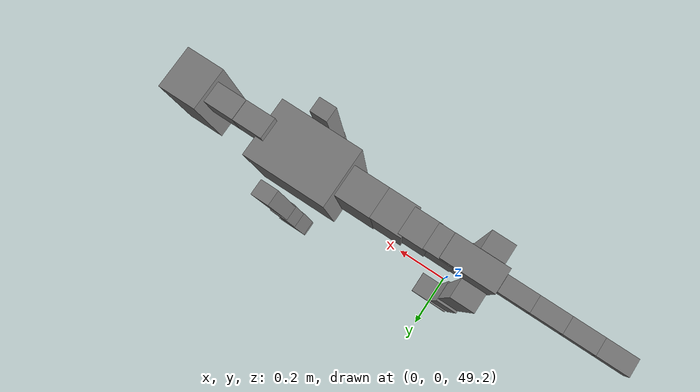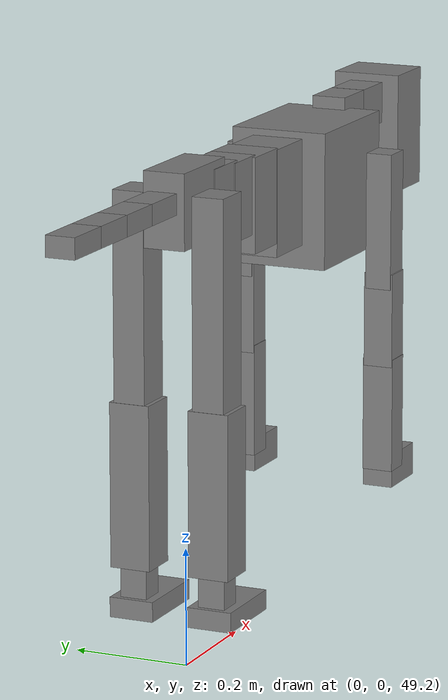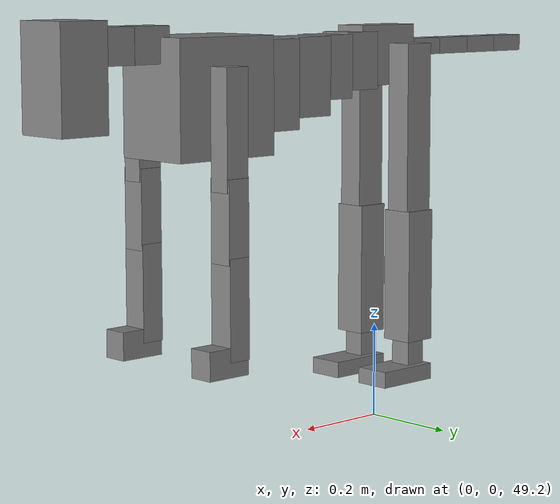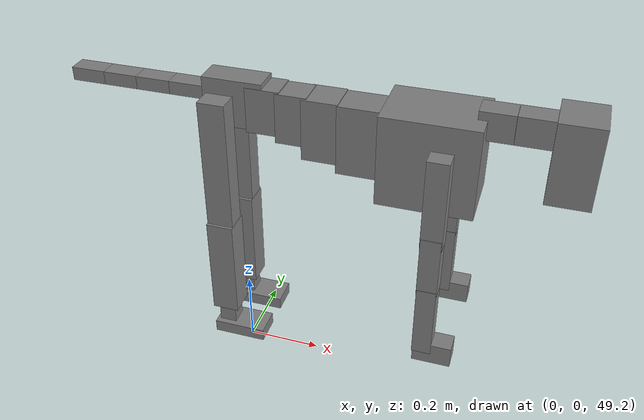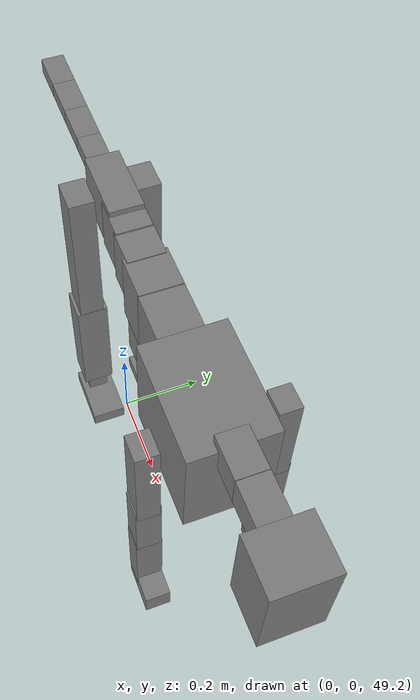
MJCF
<mujoco model="dog">

    <default>
        <joint armature="0.02" stiffness="1" damping="0.2" limited="true"/>
        <geom condim="3" friction="1 0.05 0.05" margin="0.01"/>
        <motor ctrllimited="true" ctrlrange="-1.0 1.0" forcelimited="true" gear="50"/>
    </default>

    <compiler inertiafromgeom="true" angle="radian"/>

    <option timestep="0.016" iterations="50" tolerance="1e-10" solver="Newton" jacobian="dense" cone="pyramidal"/>

    <size nconmax="20000" njmax="60000" nstack="5000000"/>
    <visual>
        <map force="0.1" zfar="30"/>
        <rgba haze="0.15 0.25 0.35 1"/>
        <quality shadowsize="2048"/>
        <global offwidth="800" offheight="800"/>
    </visual>

    <asset>
        <texture type="skybox" builtin="gradient" rgb1="0.3 0.5 0.7" rgb2="0 0 0" width="512" height="512"/>
        <texture name="texplane" type="2d" builtin="checker" rgb1=".2 .3 .4" rgb2=".1 0.15 0.2" width="512" height="512"
                 mark="cross" markrgb=".8 .8 .8"/>
        <texture name="texgeom" type="cube" builtin="flat" mark="cross" width="127" height="1278" rgb1="0.8 0.6 0.4"
                 rgb2="0.8 0.6 0.4" markrgb="1 1 1" random="0.01"/>

        <material name="matplane" reflectance="0.3" texture="texplane" texrepeat="1 1" texuniform="true"/>
        <material name="matgeom" texture="texgeom" texuniform="true" rgba="0.8 0.6 .4 1"/>
    </asset>

    <worldbody>
        <geom name="floor" pos="0 0 0" size="0 0 .25" type="plane" material="matplane" condim="3"/>

        <light directional="false" diffuse=".2 .2 .2" specular="0 0 0" pos="0 0 5" dir="0 0 -1" castshadow="false"/>
        <light mode="targetbodycom" target="torso" directional="false" diffuse=".8 .8 .8" specular="0.3 0.3 0.3"
               pos="0 0 4.0" dir="0 0 -1"/>

        <body name="root" pos="0 0 50">
            <freejoint name="root_1"/>
            <geom type="box" pos="0 0 -0.02" size="0.0774  0.0358  0.063" density="2030"/>

            <body name="spine1" pos="0.054 0 0">
                <joint name="spine1_y" axis="0 1 0" range="0 0.7" limited="true"/>
                <geom type="box" pos="0.02375 0 -0.03" size="0.04375  0.0375  0.05985" density="2030"/>

                <body name="spine2" pos="0.0612 0 0">
                    <joint name="spine2_y" axis="0 1 0" range="-0.15 0.15" limited="true"/>
                    <geom type="box" pos="0.03555  0  -0.04" size="0.04055  0.039  0.06615" density="2030"/>

                    <body name="spine3" pos="0.0730 0 0">
                        <joint name="spine3_y" axis="0 1 0" range="-0.15 0.15" limited="true"/>
                        <geom type="box" pos="0.03555  0  -0.057" size="0.04555  0.0445  0.081" density="2030"/>

                        <body name="spine4" pos="0.0780 0 0">
                            <joint name="spine4_y" axis="0 1 0" range="-0.15 0.15" limited="true"/>
                            <geom type="box" pos="0.05265  0  -0.07" size="0.05265  0.045  0.09135" density="2030"/>

                            <body name="torso" pos="0.1082 0 0">
                                <joint name="torso_y" axis="0 1 0" range="-0.15 0.15" limited="true"/>
                                <geom type="box" pos="0.11925  0  -0.085" size="0.11925  0.085  0.11745"
                                      density="2030"/>

                                <body name="neck1" pos="0.2160  0   0.0180">
                                    <joint name="neck1_y" axis="0 1 0" range="-1.2  -1" limited="true"/>
                                    <geom type="box" pos="0.0423  0  0" size="0.0423  0.03  0.036" density="2325"/>

                                    <body name="neck2" pos="0.0853  0  0">
                                        <joint name="neck2_y" axis="0 1 0" range="0.1  0" limited="true"/>
                                        <geom type="box" pos="0.0423  0  0" size="0.0423  0.03  0.036" density="2325"/>

                                        <body name="head" pos="0.0853  0  0">
                                            <joint name="head_y" axis="0 1 0" range="-0.3  -0.2" limited="true"/>
                                            <geom type="box" pos="0.0531  0  -0.055" size="0.0531  0.06  0.1044"
                                                  density="4030"/>

                                        </body>
                                    </body>
                                </body>

                                <body name="front_shoulder" pos="0.156  0   -0.0480">
                                    <joint name="front_shoulder_y" axis="0 1 0" range="-1 1.5" limited="true"/>
                                    <geom type="box" pos="0 0.13 -0.0913" size="0.0267  0.0228  0.1180" density="1158"/>
                                    <geom type="box" pos="0 -0.13 -0.0913" size="0.0267  0.0228  0.1180"
                                          density="1158"/>

                                    <body name="front_elbow" pos="0  0  -0.1826">
                                        <joint name="front_elbow_y" axis="0 1 0" range="-2 0" limited="true"/>
                                        <geom type="box" pos="0 0.13 -0.0818" size="0.0251  0.0257  0.0818"
                                              density="1081"/>
                                        <geom type="box" pos="0 -0.13 -0.0818" size="0.0251  0.0257  0.0818"
                                              density="1081"/>

                                        <body name="front_wrist" pos="0  0  -0.1637">
                                            <joint name="front_wrist_y" axis="0 1 0" range="-0.2 0" limited="true"/>
                                            <geom type="box" pos="0 0.13 -0.0860" size="0.0243  0.0270  0.0992"
                                                  density="1664"/>
                                            <geom type="box" pos="0 -0.13 -0.0860" size="0.0243  0.0270  0.0992"
                                                  density="1664"/>

                                            <body name="front_finger_end" pos="0  0  -0.1720">
                                                <joint name="front_finger_y" axis="0 1 0" range="-0.4 1"
                                                       limited="true"/>
                                                <geom type="box" pos="0.0267  0.13  -0.0137"
                                                      size="0.0490  0.0267  0.0287" density="1515"/>
                                                <geom type="box" pos="0.0267  -0.13  -0.0137"
                                                      size="0.0490  0.0267  0.0287" density="1515"/>

                                            </body>

                                        </body>
                                    </body>
                                </body>

                            </body>
                        </body>
                    </body>
                </body>
            </body>

            <body name="back_hip" pos="-0.03 0 -0.018">
                <joint name="back_hip_y" axis="0 1 0" range="-1.5 0.3" limited="true"/>
                <geom type="box" pos="0 0.07 -0.1723" size="0.0348  0.0273  0.1951" density="1154"/>
                <geom type="box" pos="0 -0.07 -0.1723" size="0.0348  0.0273  0.1951" density="1154"/>

                <body name="back_knee" pos="0  0  -0.3446">
                    <joint name="back_knee_y" axis="0 1 0" range="0 2.8" limited="true"/>
                    <geom type="box" pos="0 0.07 -0.1238" size="0.0355  0.0350  0.1393" density="1227"/>
                    <geom type="box" pos="0 -0.07 -0.1238" size="0.0355  0.0350  0.1393" density="1227"/>

                    <body name="back_ankle" pos="0  0  -0.2476">
                        <joint name="back_ankle_y" axis="0 1 0" range="-2.2 0" limited="true"/>
                        <geom type="box" pos="0 0.07 -0.0415" size="0.0230  0.0230  0.0528" density="1284"/>
                        <geom type="box" pos="0 -0.07 -0.0415" size="0.0230  0.0230  0.0528" density="1284"/>

                        <body name="back_toe_end" pos="0  0  -0.0830">
                            <joint name="back_toe_y" axis="0 1 0" range="-0.4 1" limited="true"/>
                            <geom type="box" pos="0.0386  0.07  -0.0020" size="0.0708  0.0386  0.0170" density="1515"/>
                            <geom type="box" pos="0.0386  -0.07  -0.0020" size="0.0708  0.0386  0.0170" density="1515"/>

                        </body>
                    </body>
                </body>
            </body>

            <body name="tail1" pos="-0.074 0 -0.006">
                <joint name="tail1_y" axis="0 1 0" range="-0.2 0.2" limited="true"/>
                <geom type="box" pos="-0.0536  0  0" size="0.045  0.025  0.0175" density="1587"/>

                <body name="tail2" pos="-0.09 0 0">
                    <joint name="tail2_y" axis="0 1 0" range="-0.2 0.2" limited="true"/>
                    <geom type="box" pos="-0.0536  0  0" size="0.045  0.025  0.0175" density="1587"/>

                    <body name="tail3" pos="-0.09 0 0">
                        <joint name="tail3_y" axis="0 1 0" range="-0.2 0.2" limited="true"/>
                        <geom type="box" pos="-0.0536  0  0" size="0.045  0.025  0.0175" density="1587"/>

                        <body name="tail4" pos="-0.09 0 0">
                            <joint name="tail4_y" axis="0 1 0" range="-0.2 0.2" limited="true"/>
                            <geom type="box" pos="-0.0536  0  0" size="0.045  0.025  0.0175" density="1587"/>

                        </body>
                    </body>
                </body>
            </body>
        </body>
    </worldbody>

    <actuator>
        <motor joint="spine1_y" forcerange="-150 150     "/>
        <motor joint="spine2_y" forcerange="-150 150     "/>
        <motor joint="spine3_y" forcerange="-150 150     "/>
        <motor joint="spine4_y" forcerange="-150 150     "/>
        <motor joint="torso_y" forcerange="-150 150     "/>
        <motor joint="neck1_y" forcerange="-100 100       "/>
        <motor joint="neck2_y" forcerange="-100 100       "/>
        <motor joint="head_y" forcerange="-150 150       "/>
        <motor joint="front_shoulder_y" forcerange="-107.95 144.29"/>
        <motor joint="front_elbow_y" forcerange="-155.82 131.08"/>
        <motor joint="front_wrist_y" forcerange="-67.13 148.96"/>
        <motor joint="front_finger_y" forcerange="-80.74 21.70"/>
        <motor joint="back_hip_y" forcerange="-305.76 258.47"/>
        <motor joint="back_knee_y" forcerange="-309.50 399.36"/>
        <motor joint="back_angle_y" forcerange="-126.06 141.60"/>
        <motor joint="back_toe_y" forcerange="-130.20 98.65"/>
        <motor joint="tail1_y" forcerange="-50 50     "/>
        <motor joint="tail2_y" forcerange="-50 50     "/>
        <motor joint="tail3_y" forcerange="-50 50     "/>
        <motor joint="tail4_y" forcerange="-50 50     "/>
    </actuator>
</mujoco>
